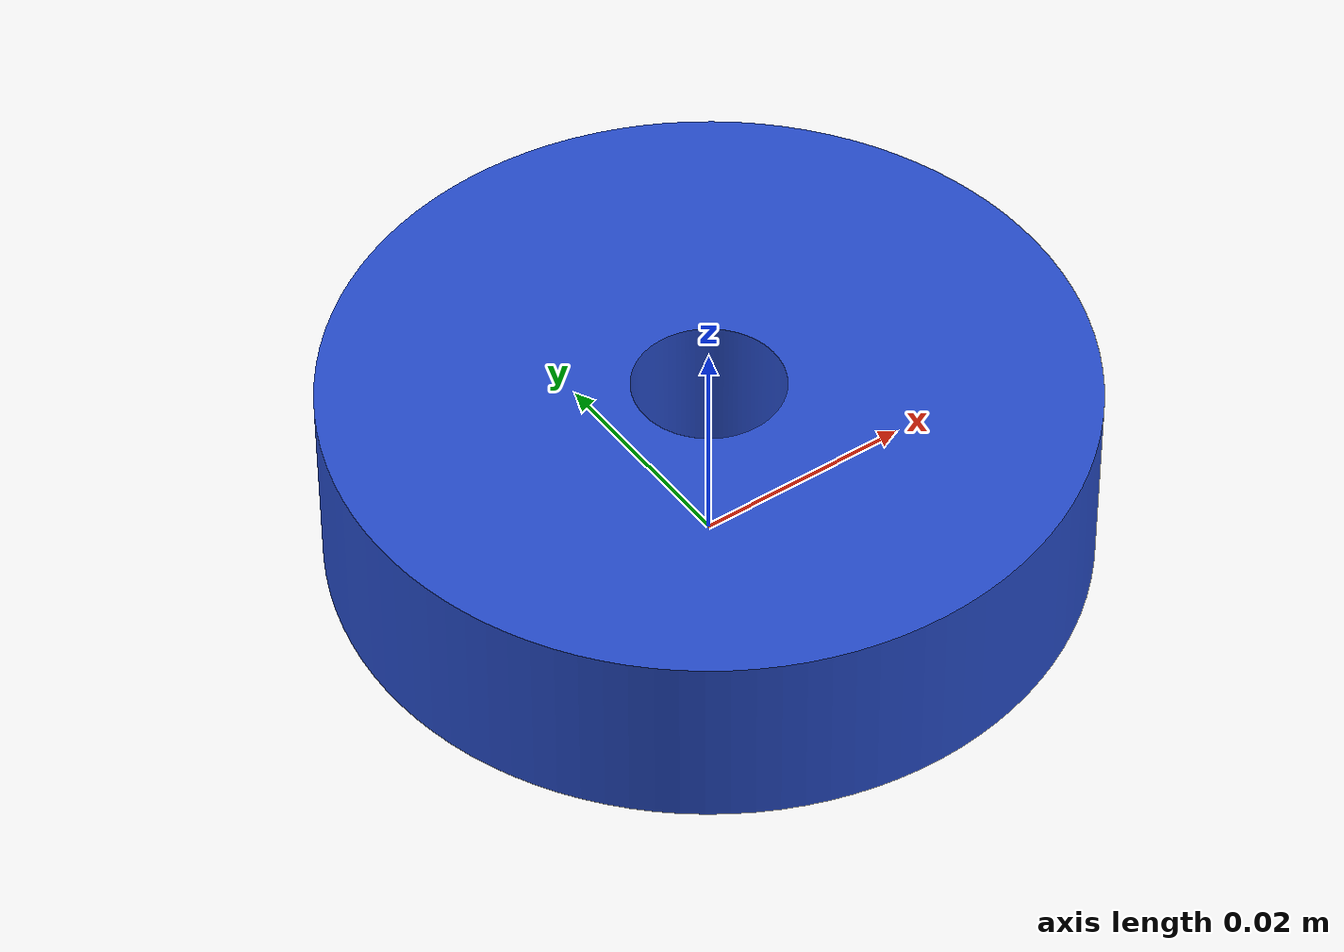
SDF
<sdf version='1.6'>
  <model name='hanoi_tower_d600'>
    <link name='token_d600_link'>
      <pose frame=''>0 0 0 0 -0 0</pose>
      <inertial>
        <pose frame=''>0 0 0.0085 0 -0 0</pose>
        <mass>0.45</mass>
        <inertia>
          <ixx>0.000123338</ixx>
          <ixy>0</ixy>
          <ixz>0</ixz>
          <iyy>0.000123338</iyy>
          <iyz>0</iyz>
          <izz>0.000225</izz>
        </inertia>
      </inertial>
      <collision name='token_d600_link_fixed_joint_lump__collision_d600_b1_collision'>
        <pose frame=''>0 0 0.0085 0 -0 0</pose>
        <geometry>
          <mesh>
            <scale>1 1 1</scale>
            <uri>model://hanoi_tower_d600/meshes/token-600.stl</uri>
          </mesh>
        </geometry>
        <surface>
          <contact>
          <ode>
            <kp>1e15</kp>
            <kd>1e13</kd>
          </ode>
        </contact>
          <friction>
            <ode>
              <mu>10</mu>
              <mu2>10</mu2>
              <fdir1>1 1 1</fdir1>
            </ode>
          </friction>
          </surface>
      </collision>
      <visual name='token_d600_link_visual'>
        <pose frame=''>0 0 0.0085 0 -0 0</pose>
        <geometry>
          <mesh>
            <scale>1 1 1</scale>
            <uri>model://hanoi_tower_d600/meshes/token-600.dae</uri>
          </mesh>
        </geometry>
        <material>
          <script>
            <name>Gazebo/Blue</name>
            <uri>file://media/materials/scripts/gazebo.material</uri>
          </script>
        </material>
      </visual>
      <gravity>1</gravity>
    </link>
    <plugin filename="libhanoi_tower_token_plugin.so" name="hanoi_tower_token_plugin">
      <mixamorig_RightHandIndex1_z>0.3</mixamorig_RightHandIndex1_z>
      <mixamorig_RightHandIndex2_z>0.8</mixamorig_RightHandIndex2_z>
      <mixamorig_RightHandIndex3_z>0.6</mixamorig_RightHandIndex3_z>
      <token_radius>0.060</token_radius>
    </plugin>
  </model>
</sdf>
